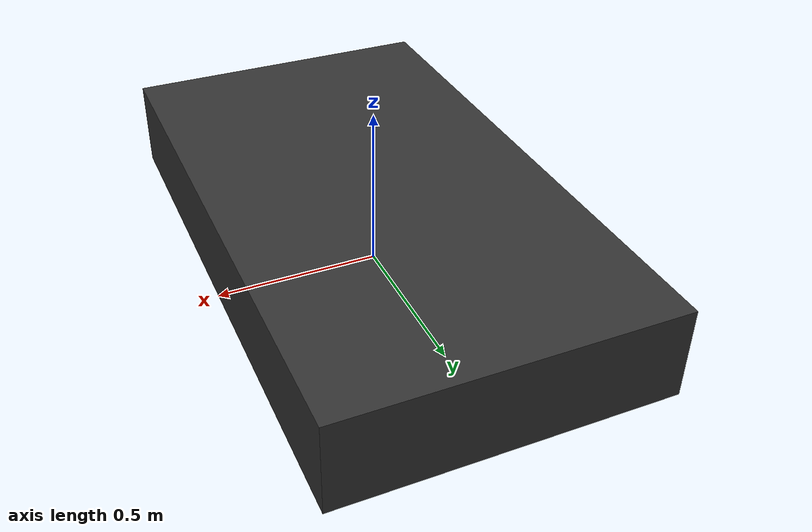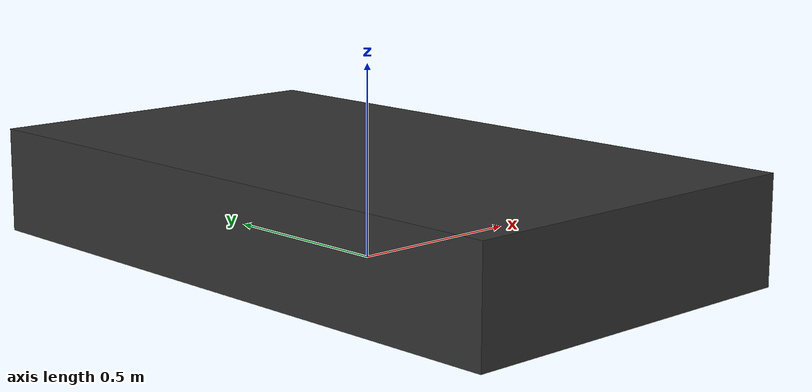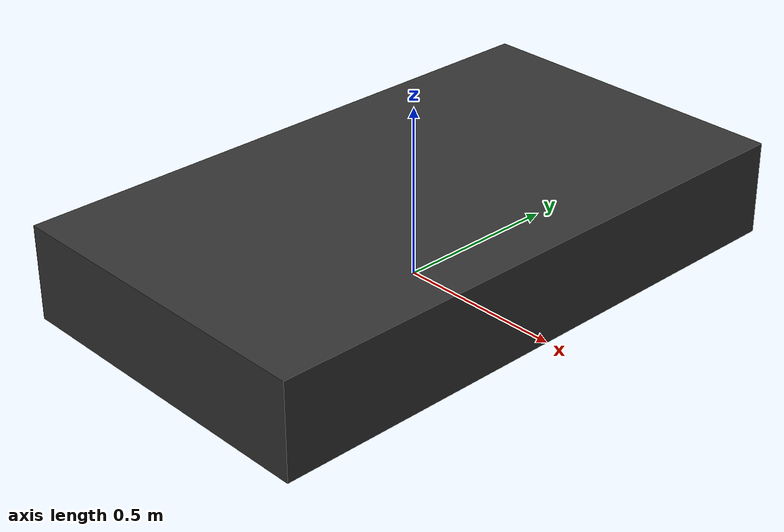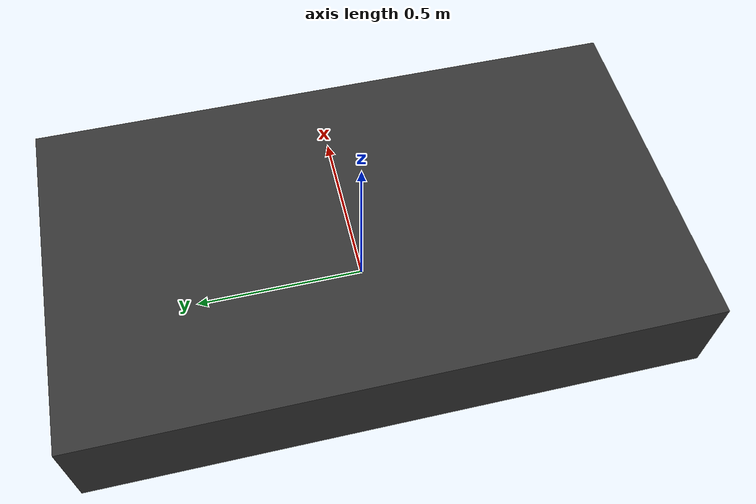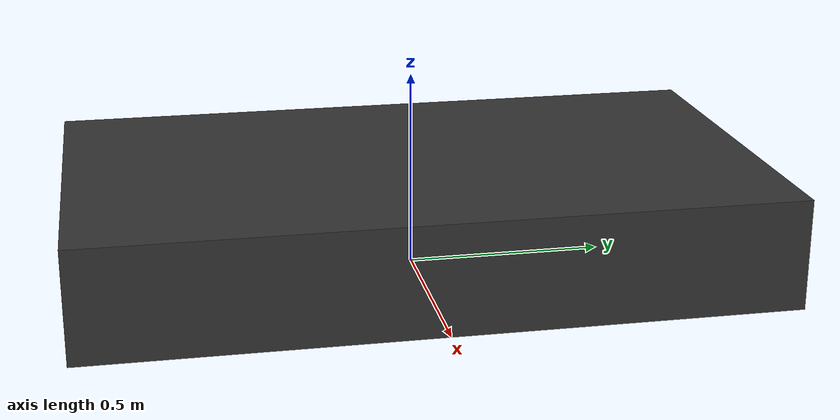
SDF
<sdf version="1.6">
    <model name="car_platform">
        <allow_auto_disable>true</allow_auto_disable>
        <link name="link">
            <kinematic>true</kinematic>
            <pose>0 0 0.14 0 0 0 0</pose>
            <visual name="visual">
                <geometry>
                    <box>
                        <size>1 1.75 0.28</size>
                    </box>
                </geometry>
                <material>
                    <ambient>0.2 0.2 0.2 1.0</ambient>
                    <diffuse>0.2 0.2 0.2 1.0</diffuse>
                </material>
            </visual>
            <collision name="box_collision">
                <geometry>
                    <box>
                        <size>1 1.75 0.28</size>
                    </box>
                </geometry>
            </collision>
        </link>
    </model>
</sdf>
